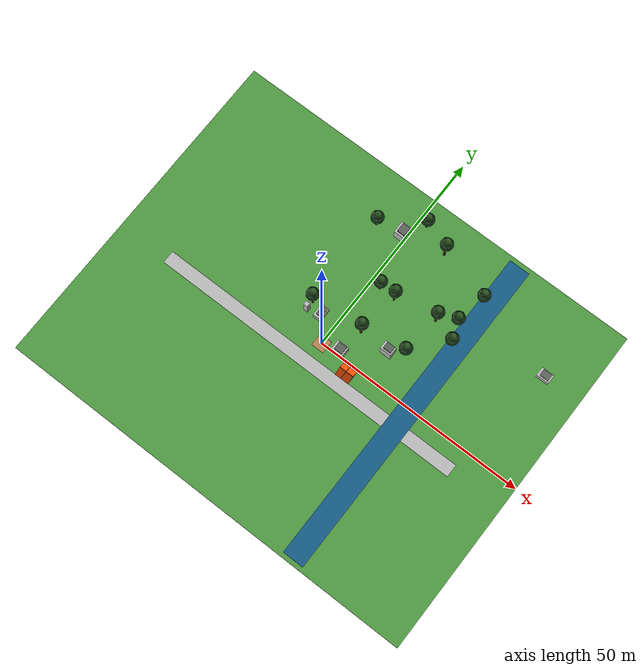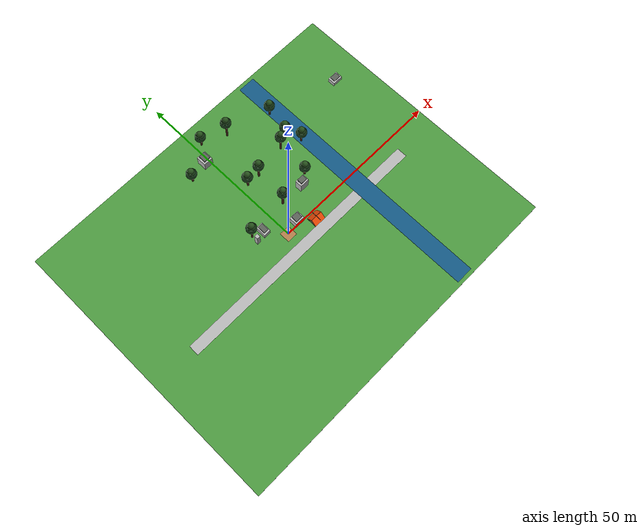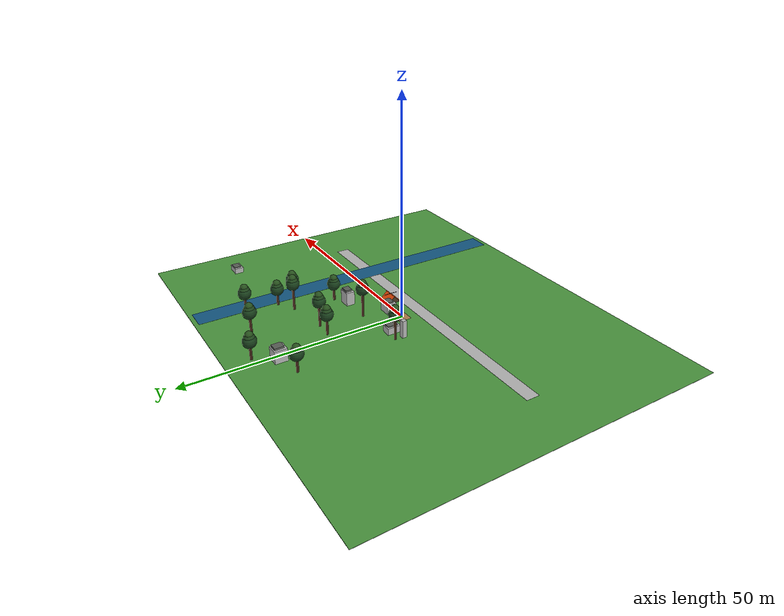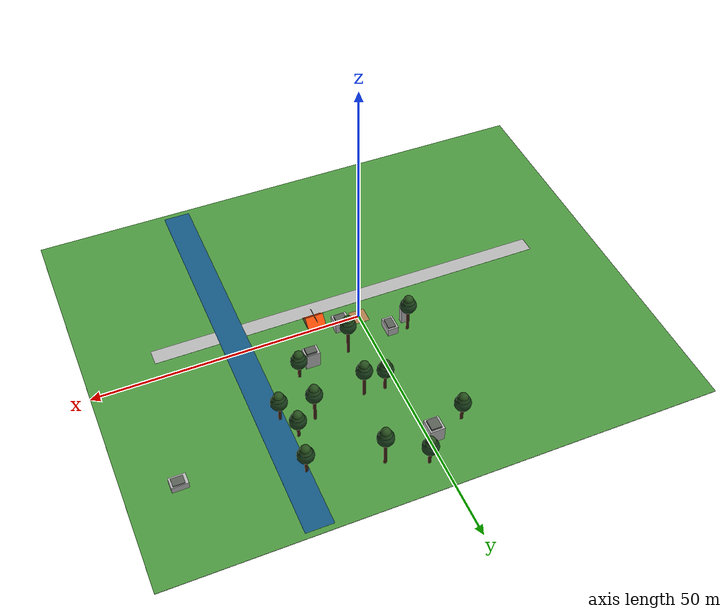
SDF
<sdf version="1.5">
 <world name="forest_rescue">
  <include><uri>model://sun</uri></include>
  <model name="yard_ground">
   <static>true</static>
   <pose>0 0 .003 0 0 0</pose>
   <link name="structure">
    <visual name="earth_visual">
     <pose>0 0 -0.05 0.0 0 0</pose>
     <geometry><box><size>100 80 0.1</size></box></geometry>
     <material>
      <script>
       <uri>file:///home/fxxk/px4_agent/scene/materials/scripts</uri>
       <uri>file:///home/fxxk/px4_agent/scene/materials/textures</uri>
       <name>Yard/grass</name>
      </script>
     </material>
    </visual>
    <collision name="earth_collision">
     <pose>0 0 -0.05 0.0 0 0</pose>
     <geometry><box><size>100 80 0.1</size></box></geometry>
    </collision>
    <visual name="trail_visual">
     <pose>0 -5 0.008 0.0 0 0</pose>
     <geometry><box><size>75 3 0.012</size></box></geometry>
     <material>
      <script>
       <uri>file:///home/fxxk/px4_agent/scene/materials/scripts</uri>
       <uri>file:///home/fxxk/px4_agent/scene/materials/textures</uri>
       <name>Yard/concrete</name>
      </script>
     </material>
    </visual>
    <visual name="stream_visual">
     <pose>23 0 0.01 0.0 0 0</pose>
     <geometry><box><size>5 78 0.014</size></box></geometry>
     <material><ambient>0.08 0.35 0.52 1</ambient><diffuse>0.08 0.35 0.52 1</diffuse></material>
    </visual>
    <visual name="pad_visual">
     <pose>0 0 0.012 0.0 0 0</pose>
     <geometry><box><size>3 3 0.012</size></box></geometry>
     <material>
      <script>
       <uri>file:///home/fxxk/px4_agent/scene/materials/scripts</uri>
       <uri>file:///home/fxxk/px4_agent/scene/materials/textures</uri>
       <name>Yard/wood</name>
      </script>
     </material>
    </visual>
   </link>
  </model>
  <model name="pine_00">
   <static>true</static>
   <pose>-7 6 .003 0 0 0</pose>
   <link name="structure">
    <visual name="trunk_visual">
     <pose>0 0 3.5303708271310503 0.0 0 0</pose>
     <geometry><cylinder><radius>0.28</radius><length>7.060741654262101</length></cylinder></geometry>
     <material><ambient>0.24 0.13 0.07 1</ambient><diffuse>0.24 0.13 0.07 1</diffuse></material>
    </visual>
    <collision name="trunk_collision">
     <pose>0 0 3.5303708271310503 0.0 0 0</pose>
     <geometry><cylinder><radius>0.28</radius><length>7.060741654262101</length></cylinder></geometry>
    </collision>
    <visual name="canopy0_visual">
     <pose>0 0 5.960741654262101 0.0 0 0</pose>
     <geometry><sphere><radius>1.5</radius></sphere></geometry>
     <material><ambient>0.1 0.25 0.11 1</ambient><diffuse>0.1 0.25 0.11 1</diffuse></material>
    </visual>
    <collision name="canopy0_collision">
     <pose>0 0 5.960741654262101 0.0 0 0</pose>
     <geometry><sphere><radius>1.5</radius></sphere></geometry>
    </collision>
    <visual name="canopy1_visual">
     <pose>0 0 6.660741654262101 0.0 0 0</pose>
     <geometry><sphere><radius>1.2</radius></sphere></geometry>
     <material><ambient>0.125 0.28 0.11 1</ambient><diffuse>0.125 0.28 0.11 1</diffuse></material>
    </visual>
    <collision name="canopy1_collision">
     <pose>0 0 6.660741654262101 0.0 0 0</pose>
     <geometry><sphere><radius>1.2</radius></sphere></geometry>
    </collision>
    <visual name="canopy2_visual">
     <pose>0 0 7.360741654262101 0.0 0 0</pose>
     <geometry><sphere><radius>0.9</radius></sphere></geometry>
     <material>
      <ambient>0.15000000000000002 0.31 0.11 1</ambient>
      <diffuse>0.15000000000000002 0.31 0.11 1</diffuse>
     </material>
    </visual>
    <collision name="canopy2_collision">
     <pose>0 0 7.360741654262101 0.0 0 0</pose>
     <geometry><sphere><radius>0.9</radius></sphere></geometry>
    </collision>
   </link>
  </model>
  <model name="pine_01">
   <static>true</static>
   <pose>5 7 .003 0 0 0</pose>
   <link name="structure">
    <visual name="trunk_visual">
     <pose>0 0 3.92967682862666 0.0 0 0</pose>
     <geometry><cylinder><radius>0.28</radius><length>7.85935365725332</length></cylinder></geometry>
     <material><ambient>0.24 0.13 0.07 1</ambient><diffuse>0.24 0.13 0.07 1</diffuse></material>
    </visual>
    <collision name="trunk_collision">
     <pose>0 0 3.92967682862666 0.0 0 0</pose>
     <geometry><cylinder><radius>0.28</radius><length>7.85935365725332</length></cylinder></geometry>
    </collision>
    <visual name="canopy0_visual">
     <pose>0 0 6.759353657253319 0.0 0 0</pose>
     <geometry><sphere><radius>1.5</radius></sphere></geometry>
     <material><ambient>0.1 0.25 0.11 1</ambient><diffuse>0.1 0.25 0.11 1</diffuse></material>
    </visual>
    <collision name="canopy0_collision">
     <pose>0 0 6.759353657253319 0.0 0 0</pose>
     <geometry><sphere><radius>1.5</radius></sphere></geometry>
    </collision>
    <visual name="canopy1_visual">
     <pose>0 0 7.4593536572533194 0.0 0 0</pose>
     <geometry><sphere><radius>1.2</radius></sphere></geometry>
     <material><ambient>0.125 0.28 0.11 1</ambient><diffuse>0.125 0.28 0.11 1</diffuse></material>
    </visual>
    <collision name="canopy1_collision">
     <pose>0 0 7.4593536572533194 0.0 0 0</pose>
     <geometry><sphere><radius>1.2</radius></sphere></geometry>
    </collision>
    <visual name="canopy2_visual">
     <pose>0 0 8.15935365725332 0.0 0 0</pose>
     <geometry><sphere><radius>0.9</radius></sphere></geometry>
     <material>
      <ambient>0.15000000000000002 0.31 0.11 1</ambient>
      <diffuse>0.15000000000000002 0.31 0.11 1</diffuse>
     </material>
    </visual>
    <collision name="canopy2_collision">
     <pose>0 0 8.15935365725332 0.0 0 0</pose>
     <geometry><sphere><radius>0.9</radius></sphere></geometry>
    </collision>
   </link>
  </model>
  <model name="pine_04">
   <static>true</static>
   <pose>15 9 .003 0 0 0</pose>
   <link name="structure">
    <visual name="trunk_visual">
     <pose>0 0 2.5923842731263123 0.0 0 0</pose>
     <geometry><cylinder><radius>0.28</radius><length>5.1847685462526245</length></cylinder></geometry>
     <material><ambient>0.24 0.13 0.07 1</ambient><diffuse>0.24 0.13 0.07 1</diffuse></material>
    </visual>
    <collision name="trunk_collision">
     <pose>0 0 2.5923842731263123 0.0 0 0</pose>
     <geometry><cylinder><radius>0.28</radius><length>5.1847685462526245</length></cylinder></geometry>
    </collision>
    <visual name="canopy0_visual">
     <pose>0 0 4.084768546252624 0.0 0 0</pose>
     <geometry><sphere><radius>1.5</radius></sphere></geometry>
     <material><ambient>0.1 0.25 0.11 1</ambient><diffuse>0.1 0.25 0.11 1</diffuse></material>
    </visual>
    <collision name="canopy0_collision">
     <pose>0 0 4.084768546252624 0.0 0 0</pose>
     <geometry><sphere><radius>1.5</radius></sphere></geometry>
    </collision>
    <visual name="canopy1_visual">
     <pose>0 0 4.784768546252624 0.0 0 0</pose>
     <geometry><sphere><radius>1.2</radius></sphere></geometry>
     <material><ambient>0.125 0.28 0.11 1</ambient><diffuse>0.125 0.28 0.11 1</diffuse></material>
    </visual>
    <collision name="canopy1_collision">
     <pose>0 0 4.784768546252624 0.0 0 0</pose>
     <geometry><sphere><radius>1.2</radius></sphere></geometry>
    </collision>
    <visual name="canopy2_visual">
     <pose>0 0 5.484768546252624 0.0 0 0</pose>
     <geometry><sphere><radius>0.9</radius></sphere></geometry>
     <material>
      <ambient>0.15000000000000002 0.31 0.11 1</ambient>
      <diffuse>0.15000000000000002 0.31 0.11 1</diffuse>
     </material>
    </visual>
    <collision name="canopy2_collision">
     <pose>0 0 5.484768546252624 0.0 0 0</pose>
     <geometry><sphere><radius>0.9</radius></sphere></geometry>
    </collision>
   </link>
  </model>
  <model name="pine_05">
   <static>true</static>
   <pose>1.8906162352744147 34.24940071215366 .003 0 0 0</pose>
   <link name="structure">
    <visual name="trunk_visual">
     <pose>0 0 2.689982311290299 0.0 0 0</pose>
     <geometry><cylinder><radius>0.28</radius><length>5.379964622580598</length></cylinder></geometry>
     <material><ambient>0.24 0.13 0.07 1</ambient><diffuse>0.24 0.13 0.07 1</diffuse></material>
    </visual>
    <collision name="trunk_collision">
     <pose>0 0 2.689982311290299 0.0 0 0</pose>
     <geometry><cylinder><radius>0.28</radius><length>5.379964622580598</length></cylinder></geometry>
    </collision>
    <visual name="canopy0_visual">
     <pose>0 0 4.279964622580598 0.0 0 0</pose>
     <geometry><sphere><radius>1.5</radius></sphere></geometry>
     <material><ambient>0.1 0.25 0.11 1</ambient><diffuse>0.1 0.25 0.11 1</diffuse></material>
    </visual>
    <collision name="canopy0_collision">
     <pose>0 0 4.279964622580598 0.0 0 0</pose>
     <geometry><sphere><radius>1.5</radius></sphere></geometry>
    </collision>
    <visual name="canopy1_visual">
     <pose>0 0 4.9799646225805985 0.0 0 0</pose>
     <geometry><sphere><radius>1.2</radius></sphere></geometry>
     <material><ambient>0.125 0.28 0.11 1</ambient><diffuse>0.125 0.28 0.11 1</diffuse></material>
    </visual>
    <collision name="canopy1_collision">
     <pose>0 0 4.9799646225805985 0.0 0 0</pose>
     <geometry><sphere><radius>1.2</radius></sphere></geometry>
    </collision>
    <visual name="canopy2_visual">
     <pose>0 0 5.679964622580599 0.0 0 0</pose>
     <geometry><sphere><radius>0.9</radius></sphere></geometry>
     <material>
      <ambient>0.15000000000000002 0.31 0.11 1</ambient>
      <diffuse>0.15000000000000002 0.31 0.11 1</diffuse>
     </material>
    </visual>
    <collision name="canopy2_collision">
     <pose>0 0 5.679964622580599 0.0 0 0</pose>
     <geometry><sphere><radius>0.9</radius></sphere></geometry>
    </collision>
   </link>
  </model>
  <model name="pine_08">
   <static>true</static>
   <pose>-6.917287486009279 28.169971407057552 .003 0 0 0</pose>
   <link name="structure">
    <visual name="trunk_visual">
     <pose>0 0 2.621682001932701 0.0 0 0</pose>
     <geometry><cylinder><radius>0.28</radius><length>5.243364003865402</length></cylinder></geometry>
     <material><ambient>0.24 0.13 0.07 1</ambient><diffuse>0.24 0.13 0.07 1</diffuse></material>
    </visual>
    <collision name="trunk_collision">
     <pose>0 0 2.621682001932701 0.0 0 0</pose>
     <geometry><cylinder><radius>0.28</radius><length>5.243364003865402</length></cylinder></geometry>
    </collision>
    <visual name="canopy0_visual">
     <pose>0 0 4.143364003865402 0.0 0 0</pose>
     <geometry><sphere><radius>1.5</radius></sphere></geometry>
     <material><ambient>0.1 0.25 0.11 1</ambient><diffuse>0.1 0.25 0.11 1</diffuse></material>
    </visual>
    <collision name="canopy0_collision">
     <pose>0 0 4.143364003865402 0.0 0 0</pose>
     <geometry><sphere><radius>1.5</radius></sphere></geometry>
    </collision>
    <visual name="canopy1_visual">
     <pose>0 0 4.8433640038654024 0.0 0 0</pose>
     <geometry><sphere><radius>1.2</radius></sphere></geometry>
     <material><ambient>0.125 0.28 0.11 1</ambient><diffuse>0.125 0.28 0.11 1</diffuse></material>
    </visual>
    <collision name="canopy1_collision">
     <pose>0 0 4.8433640038654024 0.0 0 0</pose>
     <geometry><sphere><radius>1.2</radius></sphere></geometry>
    </collision>
    <visual name="canopy2_visual">
     <pose>0 0 5.543364003865403 0.0 0 0</pose>
     <geometry><sphere><radius>0.9</radius></sphere></geometry>
     <material>
      <ambient>0.15000000000000002 0.31 0.11 1</ambient>
      <diffuse>0.15000000000000002 0.31 0.11 1</diffuse>
     </material>
    </visual>
    <collision name="canopy2_collision">
     <pose>0 0 5.543364003865403 0.0 0 0</pose>
     <geometry><sphere><radius>0.9</radius></sphere></geometry>
    </collision>
   </link>
  </model>
  <model name="pine_09">
   <static>true</static>
   <pose>15.861388394882347 18.613286852616763 .003 0 0 0</pose>
   <link name="structure">
    <visual name="trunk_visual">
     <pose>0 0 3.7235425055267726 0.0 0 0</pose>
     <geometry><cylinder><radius>0.28</radius><length>7.447085011053545</length></cylinder></geometry>
     <material><ambient>0.24 0.13 0.07 1</ambient><diffuse>0.24 0.13 0.07 1</diffuse></material>
    </visual>
    <collision name="trunk_collision">
     <pose>0 0 3.7235425055267726 0.0 0 0</pose>
     <geometry><cylinder><radius>0.28</radius><length>7.447085011053545</length></cylinder></geometry>
    </collision>
    <visual name="canopy0_visual">
     <pose>0 0 6.3470850110535455 0.0 0 0</pose>
     <geometry><sphere><radius>1.5</radius></sphere></geometry>
     <material><ambient>0.1 0.25 0.11 1</ambient><diffuse>0.1 0.25 0.11 1</diffuse></material>
    </visual>
    <collision name="canopy0_collision">
     <pose>0 0 6.3470850110535455 0.0 0 0</pose>
     <geometry><sphere><radius>1.5</radius></sphere></geometry>
    </collision>
    <visual name="canopy1_visual">
     <pose>0 0 7.047085011053546 0.0 0 0</pose>
     <geometry><sphere><radius>1.2</radius></sphere></geometry>
     <material><ambient>0.125 0.28 0.11 1</ambient><diffuse>0.125 0.28 0.11 1</diffuse></material>
    </visual>
    <collision name="canopy1_collision">
     <pose>0 0 7.047085011053546 0.0 0 0</pose>
     <geometry><sphere><radius>1.2</radius></sphere></geometry>
    </collision>
    <visual name="canopy2_visual">
     <pose>0 0 7.747085011053546 0.0 0 0</pose>
     <geometry><sphere><radius>0.9</radius></sphere></geometry>
     <material>
      <ambient>0.15000000000000002 0.31 0.11 1</ambient>
      <diffuse>0.15000000000000002 0.31 0.11 1</diffuse>
     </material>
    </visual>
    <collision name="canopy2_collision">
     <pose>0 0 7.747085011053546 0.0 0 0</pose>
     <geometry><sphere><radius>0.9</radius></sphere></geometry>
    </collision>
   </link>
  </model>
  <model name="pine_15">
   <static>true</static>
   <pose>8.595074133412645 31.454184313232684 .003 0 0 0</pose>
   <link name="structure">
    <visual name="trunk_visual">
     <pose>0 0 3.8704283701870272 0.0 0 0</pose>
     <geometry><cylinder><radius>0.28</radius><length>7.7408567403740545</length></cylinder></geometry>
     <material><ambient>0.24 0.13 0.07 1</ambient><diffuse>0.24 0.13 0.07 1</diffuse></material>
    </visual>
    <collision name="trunk_collision">
     <pose>0 0 3.8704283701870272 0.0 0 0</pose>
     <geometry><cylinder><radius>0.28</radius><length>7.7408567403740545</length></cylinder></geometry>
    </collision>
    <visual name="canopy0_visual">
     <pose>0 0 6.640856740374055 0.0 0 0</pose>
     <geometry><sphere><radius>1.5</radius></sphere></geometry>
     <material><ambient>0.1 0.25 0.11 1</ambient><diffuse>0.1 0.25 0.11 1</diffuse></material>
    </visual>
    <collision name="canopy0_collision">
     <pose>0 0 6.640856740374055 0.0 0 0</pose>
     <geometry><sphere><radius>1.5</radius></sphere></geometry>
    </collision>
    <visual name="canopy1_visual">
     <pose>0 0 7.340856740374055 0.0 0 0</pose>
     <geometry><sphere><radius>1.2</radius></sphere></geometry>
     <material><ambient>0.125 0.28 0.11 1</ambient><diffuse>0.125 0.28 0.11 1</diffuse></material>
    </visual>
    <collision name="canopy1_collision">
     <pose>0 0 7.340856740374055 0.0 0 0</pose>
     <geometry><sphere><radius>1.2</radius></sphere></geometry>
    </collision>
    <visual name="canopy2_visual">
     <pose>0 0 8.040856740374055 0.0 0 0</pose>
     <geometry><sphere><radius>0.9</radius></sphere></geometry>
     <material>
      <ambient>0.15000000000000002 0.31 0.11 1</ambient>
      <diffuse>0.15000000000000002 0.31 0.11 1</diffuse>
     </material>
    </visual>
    <collision name="canopy2_collision">
     <pose>0 0 8.040856740374055 0.0 0 0</pose>
     <geometry><sphere><radius>0.9</radius></sphere></geometry>
    </collision>
   </link>
  </model>
  <model name="pine_17">
   <static>true</static>
   <pose>6.166447940793134 16.95561764561086 .003 0 0 0</pose>
   <link name="structure">
    <visual name="trunk_visual">
     <pose>0 0 3.59919008832955 0.0 0 0</pose>
     <geometry><cylinder><radius>0.28</radius><length>7.1983801766591</length></cylinder></geometry>
     <material><ambient>0.24 0.13 0.07 1</ambient><diffuse>0.24 0.13 0.07 1</diffuse></material>
    </visual>
    <collision name="trunk_collision">
     <pose>0 0 3.59919008832955 0.0 0 0</pose>
     <geometry><cylinder><radius>0.28</radius><length>7.1983801766591</length></cylinder></geometry>
    </collision>
    <visual name="canopy0_visual">
     <pose>0 0 6.0983801766591 0.0 0 0</pose>
     <geometry><sphere><radius>1.5</radius></sphere></geometry>
     <material><ambient>0.1 0.25 0.11 1</ambient><diffuse>0.1 0.25 0.11 1</diffuse></material>
    </visual>
    <collision name="canopy0_collision">
     <pose>0 0 6.0983801766591 0.0 0 0</pose>
     <geometry><sphere><radius>1.5</radius></sphere></geometry>
    </collision>
    <visual name="canopy1_visual">
     <pose>0 0 6.7983801766591005 0.0 0 0</pose>
     <geometry><sphere><radius>1.2</radius></sphere></geometry>
     <material><ambient>0.125 0.28 0.11 1</ambient><diffuse>0.125 0.28 0.11 1</diffuse></material>
    </visual>
    <collision name="canopy1_collision">
     <pose>0 0 6.7983801766591005 0.0 0 0</pose>
     <geometry><sphere><radius>1.2</radius></sphere></geometry>
    </collision>
    <visual name="canopy2_visual">
     <pose>0 0 7.498380176659101 0.0 0 0</pose>
     <geometry><sphere><radius>0.9</radius></sphere></geometry>
     <material>
      <ambient>0.15000000000000002 0.31 0.11 1</ambient>
      <diffuse>0.15000000000000002 0.31 0.11 1</diffuse>
     </material>
    </visual>
    <collision name="canopy2_collision">
     <pose>0 0 7.498380176659101 0.0 0 0</pose>
     <geometry><sphere><radius>0.9</radius></sphere></geometry>
    </collision>
   </link>
  </model>
  <model name="pine_20">
   <static>true</static>
   <pose>2.314928236108365 17.104128517782737 .003 0 0 0</pose>
   <link name="structure">
    <visual name="trunk_visual">
     <pose>0 0 2.956444694403152 0.0 0 0</pose>
     <geometry><cylinder><radius>0.28</radius><length>5.912889388806304</length></cylinder></geometry>
     <material><ambient>0.24 0.13 0.07 1</ambient><diffuse>0.24 0.13 0.07 1</diffuse></material>
    </visual>
    <collision name="trunk_collision">
     <pose>0 0 2.956444694403152 0.0 0 0</pose>
     <geometry><cylinder><radius>0.28</radius><length>5.912889388806304</length></cylinder></geometry>
    </collision>
    <visual name="canopy0_visual">
     <pose>0 0 4.812889388806305 0.0 0 0</pose>
     <geometry><sphere><radius>1.5</radius></sphere></geometry>
     <material><ambient>0.1 0.25 0.11 1</ambient><diffuse>0.1 0.25 0.11 1</diffuse></material>
    </visual>
    <collision name="canopy0_collision">
     <pose>0 0 4.812889388806305 0.0 0 0</pose>
     <geometry><sphere><radius>1.5</radius></sphere></geometry>
    </collision>
    <visual name="canopy1_visual">
     <pose>0 0 5.512889388806305 0.0 0 0</pose>
     <geometry><sphere><radius>1.2</radius></sphere></geometry>
     <material><ambient>0.125 0.28 0.11 1</ambient><diffuse>0.125 0.28 0.11 1</diffuse></material>
    </visual>
    <collision name="canopy1_collision">
     <pose>0 0 5.512889388806305 0.0 0 0</pose>
     <geometry><sphere><radius>1.2</radius></sphere></geometry>
    </collision>
    <visual name="canopy2_visual">
     <pose>0 0 6.212889388806305 0.0 0 0</pose>
     <geometry><sphere><radius>0.9</radius></sphere></geometry>
     <material>
      <ambient>0.15000000000000002 0.31 0.11 1</ambient>
      <diffuse>0.15000000000000002 0.31 0.11 1</diffuse>
     </material>
    </visual>
    <collision name="canopy2_collision">
     <pose>0 0 6.212889388806305 0.0 0 0</pose>
     <geometry><sphere><radius>0.9</radius></sphere></geometry>
    </collision>
   </link>
  </model>
  <model name="pine_26">
   <static>true</static>
   <pose>21.039621989691668 28.028937861510833 .003 0 0 0</pose>
   <link name="structure">
    <visual name="trunk_visual">
     <pose>0 0 2.714147461637563 0.0 0 0</pose>
     <geometry><cylinder><radius>0.28</radius><length>5.428294923275126</length></cylinder></geometry>
     <material><ambient>0.24 0.13 0.07 1</ambient><diffuse>0.24 0.13 0.07 1</diffuse></material>
    </visual>
    <collision name="trunk_collision">
     <pose>0 0 2.714147461637563 0.0 0 0</pose>
     <geometry><cylinder><radius>0.28</radius><length>5.428294923275126</length></cylinder></geometry>
    </collision>
    <visual name="canopy0_visual">
     <pose>0 0 4.328294923275125 0.0 0 0</pose>
     <geometry><sphere><radius>1.5</radius></sphere></geometry>
     <material><ambient>0.1 0.25 0.11 1</ambient><diffuse>0.1 0.25 0.11 1</diffuse></material>
    </visual>
    <collision name="canopy0_collision">
     <pose>0 0 4.328294923275125 0.0 0 0</pose>
     <geometry><sphere><radius>1.5</radius></sphere></geometry>
    </collision>
    <visual name="canopy1_visual">
     <pose>0 0 5.0282949232751255 0.0 0 0</pose>
     <geometry><sphere><radius>1.2</radius></sphere></geometry>
     <material><ambient>0.125 0.28 0.11 1</ambient><diffuse>0.125 0.28 0.11 1</diffuse></material>
    </visual>
    <collision name="canopy1_collision">
     <pose>0 0 5.0282949232751255 0.0 0 0</pose>
     <geometry><sphere><radius>1.2</radius></sphere></geometry>
    </collision>
    <visual name="canopy2_visual">
     <pose>0 0 5.728294923275126 0.0 0 0</pose>
     <geometry><sphere><radius>0.9</radius></sphere></geometry>
     <material>
      <ambient>0.15000000000000002 0.31 0.11 1</ambient>
      <diffuse>0.15000000000000002 0.31 0.11 1</diffuse>
     </material>
    </visual>
    <collision name="canopy2_collision">
     <pose>0 0 5.728294923275126 0.0 0 0</pose>
     <geometry><sphere><radius>0.9</radius></sphere></geometry>
    </collision>
   </link>
  </model>
  <model name="pine_27">
   <static>true</static>
   <pose>19.692665629483344 20.903450611424194 .003 0 0 0</pose>
   <link name="structure">
    <visual name="trunk_visual">
     <pose>0 0 2.5359658945530783 0.0 0 0</pose>
     <geometry><cylinder><radius>0.28</radius><length>5.071931789106157</length></cylinder></geometry>
     <material><ambient>0.24 0.13 0.07 1</ambient><diffuse>0.24 0.13 0.07 1</diffuse></material>
    </visual>
    <collision name="trunk_collision">
     <pose>0 0 2.5359658945530783 0.0 0 0</pose>
     <geometry><cylinder><radius>0.28</radius><length>5.071931789106157</length></cylinder></geometry>
    </collision>
    <visual name="canopy0_visual">
     <pose>0 0 3.9719317891061565 0.0 0 0</pose>
     <geometry><sphere><radius>1.5</radius></sphere></geometry>
     <material><ambient>0.1 0.25 0.11 1</ambient><diffuse>0.1 0.25 0.11 1</diffuse></material>
    </visual>
    <collision name="canopy0_collision">
     <pose>0 0 3.9719317891061565 0.0 0 0</pose>
     <geometry><sphere><radius>1.5</radius></sphere></geometry>
    </collision>
    <visual name="canopy1_visual">
     <pose>0 0 4.671931789106156 0.0 0 0</pose>
     <geometry><sphere><radius>1.2</radius></sphere></geometry>
     <material><ambient>0.125 0.28 0.11 1</ambient><diffuse>0.125 0.28 0.11 1</diffuse></material>
    </visual>
    <collision name="canopy1_collision">
     <pose>0 0 4.671931789106156 0.0 0 0</pose>
     <geometry><sphere><radius>1.2</radius></sphere></geometry>
    </collision>
    <visual name="canopy2_visual">
     <pose>0 0 5.371931789106156 0.0 0 0</pose>
     <geometry><sphere><radius>0.9</radius></sphere></geometry>
     <material>
      <ambient>0.15000000000000002 0.31 0.11 1</ambient>
      <diffuse>0.15000000000000002 0.31 0.11 1</diffuse>
     </material>
    </visual>
    <collision name="canopy2_collision">
     <pose>0 0 5.371931789106156 0.0 0 0</pose>
     <geometry><sphere><radius>0.9</radius></sphere></geometry>
    </collision>
   </link>
  </model>
  <model name="pine_28">
   <static>true</static>
   <pose>21.344776398420223 16.392566381395525 .003 0 0 0</pose>
   <link name="structure">
    <visual name="trunk_visual">
     <pose>0 0 2.766667092860701 0.0 0 0</pose>
     <geometry><cylinder><radius>0.28</radius><length>5.533334185721402</length></cylinder></geometry>
     <material><ambient>0.24 0.13 0.07 1</ambient><diffuse>0.24 0.13 0.07 1</diffuse></material>
    </visual>
    <collision name="trunk_collision">
     <pose>0 0 2.766667092860701 0.0 0 0</pose>
     <geometry><cylinder><radius>0.28</radius><length>5.533334185721402</length></cylinder></geometry>
    </collision>
    <visual name="canopy0_visual">
     <pose>0 0 4.433334185721401 0.0 0 0</pose>
     <geometry><sphere><radius>1.5</radius></sphere></geometry>
     <material><ambient>0.1 0.25 0.11 1</ambient><diffuse>0.1 0.25 0.11 1</diffuse></material>
    </visual>
    <collision name="canopy0_collision">
     <pose>0 0 4.433334185721401 0.0 0 0</pose>
     <geometry><sphere><radius>1.5</radius></sphere></geometry>
    </collision>
    <visual name="canopy1_visual">
     <pose>0 0 5.133334185721401 0.0 0 0</pose>
     <geometry><sphere><radius>1.2</radius></sphere></geometry>
     <material><ambient>0.125 0.28 0.11 1</ambient><diffuse>0.125 0.28 0.11 1</diffuse></material>
    </visual>
    <collision name="canopy1_collision">
     <pose>0 0 5.133334185721401 0.0 0 0</pose>
     <geometry><sphere><radius>1.2</radius></sphere></geometry>
    </collision>
    <visual name="canopy2_visual">
     <pose>0 0 5.833334185721402 0.0 0 0</pose>
     <geometry><sphere><radius>0.9</radius></sphere></geometry>
     <material>
      <ambient>0.15000000000000002 0.31 0.11 1</ambient>
      <diffuse>0.15000000000000002 0.31 0.11 1</diffuse>
     </material>
    </visual>
    <collision name="canopy2_collision">
     <pose>0 0 5.833334185721402 0.0 0 0</pose>
     <geometry><sphere><radius>0.9</radius></sphere></geometry>
    </collision>
   </link>
  </model>
  <model name="rock_00">
   <static>true</static>
   <pose>4 1 .003 0 0 0</pose>
   <link name="structure">
    <visual name="stone_visual">
     <pose>0 0 1.1 0.0 0 0</pose>
     <geometry><box><size>2.8 2.4 2.2</size></box></geometry>
     <material>
      <script>
       <uri>file:///home/fxxk/px4_agent/scene/materials/scripts</uri>
       <uri>file:///home/fxxk/px4_agent/scene/materials/textures</uri>
       <name>Yard/concrete</name>
      </script>
     </material>
    </visual>
    <collision name="stone_collision">
     <pose>0 0 1.1 0.0 0 0</pose>
     <geometry><box><size>2.8 2.4 2.2</size></box></geometry>
    </collision>
    <visual name="cap_visual">
     <pose>0.1 0.1 2.2 0.0 0 0</pose>
     <geometry><box><size>1.9599999999999997 1.7999999999999998 0.66</size></box></geometry>
     <material><ambient>0.36 0.38 0.35 1</ambient><diffuse>0.36 0.38 0.35 1</diffuse></material>
    </visual>
    <collision name="cap_collision">
     <pose>0.1 0.1 2.2 0.0 0 0</pose>
     <geometry><box><size>1.9599999999999997 1.7999999999999998 0.66</size></box></geometry>
    </collision>
   </link>
  </model>
  <model name="rock_01">
   <static>true</static>
   <pose>-4 5 .003 0 0 0</pose>
   <link name="structure">
    <visual name="stone_visual">
     <pose>0 0 0.8 0.0 0 0</pose>
     <geometry><box><size>2 3 1.6</size></box></geometry>
     <material>
      <script>
       <uri>file:///home/fxxk/px4_agent/scene/materials/scripts</uri>
       <uri>file:///home/fxxk/px4_agent/scene/materials/textures</uri>
       <name>Yard/concrete</name>
      </script>
     </material>
    </visual>
    <collision name="stone_collision">
     <pose>0 0 0.8 0.0 0 0</pose>
     <geometry><box><size>2 3 1.6</size></box></geometry>
    </collision>
    <visual name="cap_visual">
     <pose>0.1 0.1 1.6 0.0 0 0</pose>
     <geometry><box><size>1.4 2.25 0.48</size></box></geometry>
     <material><ambient>0.36 0.38 0.35 1</ambient><diffuse>0.36 0.38 0.35 1</diffuse></material>
    </visual>
    <collision name="cap_collision">
     <pose>0.1 0.1 1.6 0.0 0 0</pose>
     <geometry><box><size>1.4 2.25 0.48</size></box></geometry>
    </collision>
   </link>
  </model>
  <model name="rock_02">
   <static>true</static>
   <pose>12 7 .003 0 0 0</pose>
   <link name="structure">
    <visual name="stone_visual">
     <pose>0 0 1.6 0.0 0 0</pose>
     <geometry><box><size>2.7 2 3.2</size></box></geometry>
     <material>
      <script>
       <uri>file:///home/fxxk/px4_agent/scene/materials/scripts</uri>
       <uri>file:///home/fxxk/px4_agent/scene/materials/textures</uri>
       <name>Yard/concrete</name>
      </script>
     </material>
    </visual>
    <collision name="stone_collision">
     <pose>0 0 1.6 0.0 0 0</pose>
     <geometry><box><size>2.7 2 3.2</size></box></geometry>
    </collision>
    <visual name="cap_visual">
     <pose>0.1 0.1 3.2 0.0 0 0</pose>
     <geometry><box><size>1.89 1.5 0.96</size></box></geometry>
     <material><ambient>0.36 0.38 0.35 1</ambient><diffuse>0.36 0.38 0.35 1</diffuse></material>
    </visual>
    <collision name="cap_collision">
     <pose>0.1 0.1 3.2 0.0 0 0</pose>
     <geometry><box><size>1.89 1.5 0.96</size></box></geometry>
    </collision>
   </link>
  </model>
  <model name="rock_03">
   <static>true</static>
   <pose>-1.1076461877063508 29.542268982609766 .003 0 0 0</pose>
   <link name="structure">
    <visual name="stone_visual">
     <pose>0 0 1.4402132940857741 0.0 0 0</pose>
     <geometry><box><size>2.6674213905777897 2.815774508054073 2.8804265881715483</size></box></geometry>
     <material>
      <script>
       <uri>file:///home/fxxk/px4_agent/scene/materials/scripts</uri>
       <uri>file:///home/fxxk/px4_agent/scene/materials/textures</uri>
       <name>Yard/concrete</name>
      </script>
     </material>
    </visual>
    <collision name="stone_collision">
     <pose>0 0 1.4402132940857741 0.0 0 0</pose>
     <geometry><box><size>2.6674213905777897 2.815774508054073 2.8804265881715483</size></box></geometry>
    </collision>
    <visual name="cap_visual">
     <pose>0.1 0.1 2.8804265881715483 0.0 0 0</pose>
     <geometry><box><size>1.8671949734044526 2.1118308810405546 0.8641279764514644</size></box></geometry>
     <material><ambient>0.36 0.38 0.35 1</ambient><diffuse>0.36 0.38 0.35 1</diffuse></material>
    </visual>
    <collision name="cap_collision">
     <pose>0.1 0.1 2.8804265881715483 0.0 0 0</pose>
     <geometry><box><size>1.8671949734044526 2.1118308810405546 0.8641279764514644</size></box></geometry>
    </collision>
   </link>
  </model>
  <model name="rock_10">
   <static>true</static>
   <pose>40.97580287372827 22.72282272970446 .003 0 0 0</pose>
   <link name="structure">
    <visual name="stone_visual">
     <pose>0 0 0.6478130688998409 0.0 0 0</pose>
     <geometry><box><size>2.9862550767790292 2.103603799151948 1.2956261377996818</size></box></geometry>
     <material>
      <script>
       <uri>file:///home/fxxk/px4_agent/scene/materials/scripts</uri>
       <uri>file:///home/fxxk/px4_agent/scene/materials/textures</uri>
       <name>Yard/concrete</name>
      </script>
     </material>
    </visual>
    <collision name="stone_collision">
     <pose>0 0 0.6478130688998409 0.0 0 0</pose>
     <geometry><box><size>2.9862550767790292 2.103603799151948 1.2956261377996818</size></box></geometry>
    </collision>
    <visual name="cap_visual">
     <pose>0.1 0.1 1.2956261377996818 0.0 0 0</pose>
     <geometry><box><size>2.0903785537453206 1.5777028493639609 0.3886878413399045</size></box></geometry>
     <material><ambient>0.36 0.38 0.35 1</ambient><diffuse>0.36 0.38 0.35 1</diffuse></material>
    </visual>
    <collision name="cap_collision">
     <pose>0.1 0.1 1.2956261377996818 0.0 0 0</pose>
     <geometry><box><size>2.0903785537453206 1.5777028493639609 0.3886878413399045</size></box></geometry>
    </collision>
   </link>
  </model>
  <model name="orange_rescue_tent">
   <static>true</static>
   <pose>8 -2 .003 0 0 0</pose>
   <link name="structure">
    <visual name="canvas-1_visual">
     <pose>0 -0.75 0.84 0.78 0 0</pose>
     <geometry><box><size>3.4 2.2 0.08</size></box></geometry>
     <material><ambient>1 0.32 0.03 1</ambient><diffuse>1 0.32 0.03 1</diffuse></material>
    </visual>
    <collision name="canvas-1_collision">
     <pose>0 -0.75 0.84 0.78 0 0</pose>
     <geometry><box><size>3.4 2.2 0.08</size></box></geometry>
    </collision>
    <visual name="canvas1_visual">
     <pose>0 0.75 0.84 -0.78 0 0</pose>
     <geometry><box><size>3.4 2.2 0.08</size></box></geometry>
     <material><ambient>1 0.32 0.03 1</ambient><diffuse>1 0.32 0.03 1</diffuse></material>
    </visual>
    <collision name="canvas1_collision">
     <pose>0 0.75 0.84 -0.78 0 0</pose>
     <geometry><box><size>3.4 2.2 0.08</size></box></geometry>
    </collision>
    <visual name="floor_visual">
     <pose>0 0 0.04 0.0 0 0</pose>
     <geometry><box><size>3.4 3 0.08</size></box></geometry>
     <material><ambient>0.26 0.2 0.12 1</ambient><diffuse>0.26 0.2 0.12 1</diffuse></material>
    </visual>
    <collision name="floor_collision">
     <pose>0 0 0.04 0.0 0 0</pose>
     <geometry><box><size>3.4 3 0.08</size></box></geometry>
    </collision>
    <visual name="ridge_visual">
     <pose>0 0 1.65 1.5707963267948966 0 0</pose>
     <geometry><cylinder><radius>0.045</radius><length>3.5</length></cylinder></geometry>
     <material><ambient>0.15 0.15 0.15 1</ambient><diffuse>0.15 0.15 0.15 1</diffuse></material>
    </visual>
    <collision name="ridge_collision">
     <pose>0 0 1.65 1.5707963267948966 0 0</pose>
     <geometry><cylinder><radius>0.045</radius><length>3.5</length></cylinder></geometry>
    </collision>
   </link>
  </model>
  <model name="ruin_pillar_5">
   <static>true</static>
   <pose>-7 4 .003 0 0 0</pose>
   <link name="structure">
    <visual name="pillar_visual">
     <pose>0 0 2.0 0.0 0 0</pose>
     <geometry><box><size>1 1 4</size></box></geometry>
     <material>
      <script>
       <uri>file:///home/fxxk/px4_agent/scene/materials/scripts</uri>
       <uri>file:///home/fxxk/px4_agent/scene/materials/textures</uri>
       <name>Yard/brick</name>
      </script>
     </material>
    </visual>
    <collision name="pillar_collision">
     <pose>0 0 2.0 0.0 0 0</pose>
     <geometry><box><size>1 1 4</size></box></geometry>
    </collision>
   </link>
  </model>
 </world>
</sdf>
